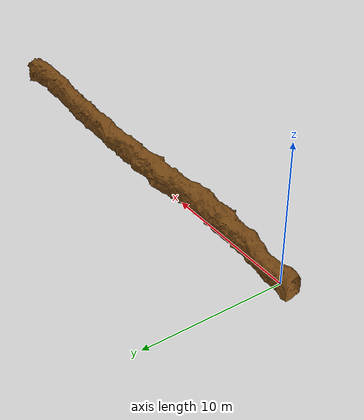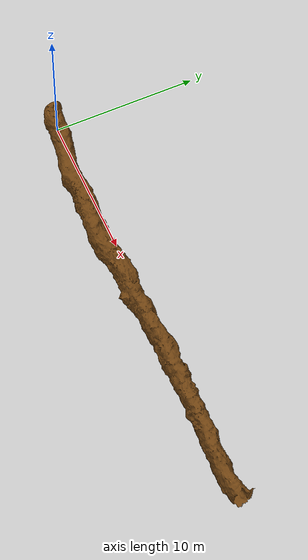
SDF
<?xml version="1.0"?>
<sdf version="1.6">
  <world name="cave_world">
    <scene>
      <grid>false</grid>
      <ambient>1.0 1.0 1.0</ambient>
      <background>0.8 0.8 0.8</background>
    </scene>
    <physics name="1ms" type="ignored">
      <max_step_size>0.001</max_step_size>
      <real_time_factor>1.0</real_time_factor>
    </physics>

    <plugin filename="libAttachableJoint.so"
    name="attachable_joint::AttachableJoint">
  </plugin>

  <plugin filename="ignition-gazebo-contact-system"
  name="ignition::gazebo::systems::Contact">
</plugin>

    <plugin filename="libignition-gazebo-physics-system.so" name="ignition::gazebo::systems::Physics"></plugin>
    <plugin filename="libignition-gazebo-user-commands-system.so" name="ignition::gazebo::systems::UserCommands"></plugin>
    <plugin filename="libignition-gazebo-scene-broadcaster-system.so" name="ignition::gazebo::systems::SceneBroadcaster"></plugin>

    <!-- FLOOR -->
    <model name="ground_plane">
      <static>true</static>
      <pose>0 0 -0.27 0 0 0</pose>
      <link name="link">
        <collision name="collision">
          <geometry>
            <plane>
              <normal>0 0 1</normal>
            </plane>
          </geometry>
        </collision>
      </link>
    </model>

    <model name="cave">
      <include>
        <pose>33.0 0 -0.5 0 0 -1.4</pose>
        <uri>model://cave</uri>
        <name>cave</name>
      </include>
    </model>

    <!-- Add light inside mine -->
    <light type="directional" name="light">
      <cast_shadows>false</cast_shadows>
      <pose>3.75 -0.65 0 3.14 0 0</pose>
      <diffuse>0.8 0.8 0.8 1</diffuse>
      <specular>0.2 0.2 0.2 1</specular>
      <attenuation>
        <range>0</range>
        <constant>0.9</constant>
        <linear>0.01</linear>
        <quadratic>0.001</quadratic>
      </attenuation>
      <direction>0 0 0</direction>
    </light>
  </world>
</sdf>

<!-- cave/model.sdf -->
<sdf version="1.6">
  <model name="cave">
    <static>true</static>
    <link name="link">
      <collision name="collision">
        <geometry>
          <mesh>
            <scale>1 1 1</scale>
            <uri>model://cave/meshes/cave.stl</uri>
          </mesh>
        </geometry>
      </collision>
      <visual name="visual">
        <geometry>
          <mesh>
            <scale>1 1 1</scale>
            <uri>model://cave/meshes/cave.dae</uri>
          </mesh>
        </geometry>
        <material>
          <ambient>0.45 0.27 0.07 1</ambient>
          <diffuse>0.45 0.27 0.07 1</diffuse>
          <specular>0 0 0 0</specular>
          <emissive>0 0 0 1</emissive>
        </material>
      </visual>
    </link>

    <link name="rock1">
      <pose> -5.5 -32 0.2 0 0 0</pose>
      <collision name="collision">
        <geometry>
          <mesh>
            <scale>0.002 0.002 0.002</scale>
            <uri>model://cave/meshes/Rock_1.stl</uri>
          </mesh>
        </geometry>
      </collision>
      <visual name="visual">
        <geometry>
          <mesh>
            <scale>0.002 0.002 0.002</scale>
            <uri>model://cave/meshes/Rock_1.stl</uri>
          </mesh>
        </geometry>
        <material>
          <ambient>0.8 0.8 0.6 1</ambient>
          <diffuse>0.8 0.8 0.6 1</diffuse>
          <specular>0 0 0 0</specular>
          <emissive>0 0 0 1</emissive>
        </material>
      </visual>
    </link>

    <link name="rock2">
      <pose> -5.1 -31 0.1 0 0 0</pose>
      <collision name="collision">
        <geometry>
          <mesh>
            <scale>0.002 0.002 0.002</scale>
            <uri>model://cave/meshes/Rock_2.stl</uri>
          </mesh>
        </geometry>
      </collision>
      <visual name="visual">
        <geometry>
          <mesh>
            <scale>0.002 0.002 0.002</scale>
            <uri>model://cave/meshes/Rock_2.stl</uri>
          </mesh>
        </geometry>
        <material>
          <ambient>0.8 0.8 0.6 1</ambient>
          <diffuse>0.8 0.8 0.6 1</diffuse>
          <specular>0 0 0 0</specular>
          <emissive>0 0 0 1</emissive>
        </material>
      </visual>
    </link>

    <link name="rock3">
      <pose> -4.9 -30 0.05 0 0 0</pose>
      <collision name="collision">
        <geometry>
          <mesh>
            <scale>0.002 0.004 0.004</scale>
            <uri>model://cave/meshes/Rock_3.stl</uri>
          </mesh>
        </geometry>
      </collision>
      <visual name="visual">
        <geometry>
          <mesh>
            <scale>0.002 0.004 0.004</scale>
            <uri>model://cave/meshes/Rock_3.stl</uri>
          </mesh>
        </geometry>
        <material>
          <ambient>0.8 0.8 0.6 1</ambient>
          <diffuse>0.8 0.8 0.6 1</diffuse>
          <specular>0 0 0 0</specular>
          <emissive>0 0 0 1</emissive>
        </material>
      </visual>
    </link>

  </model>
</sdf>
